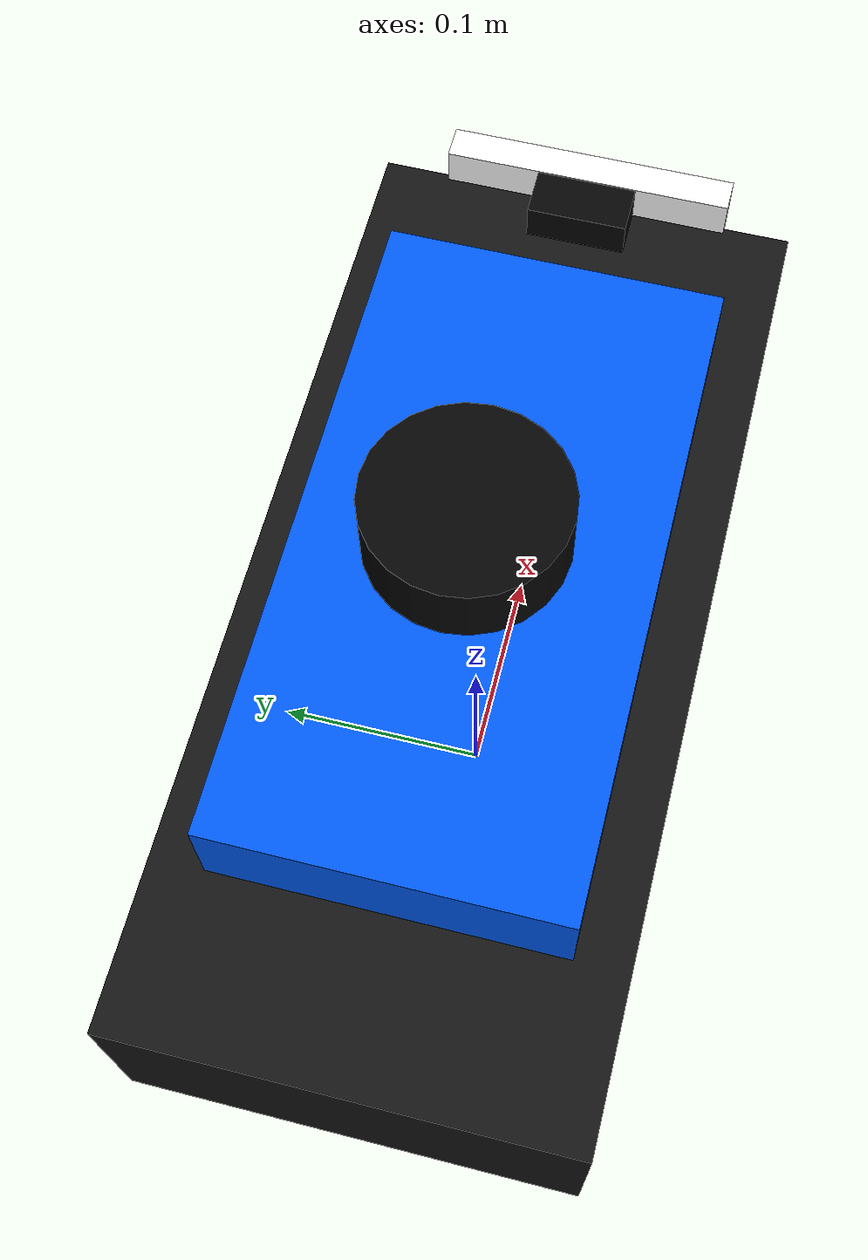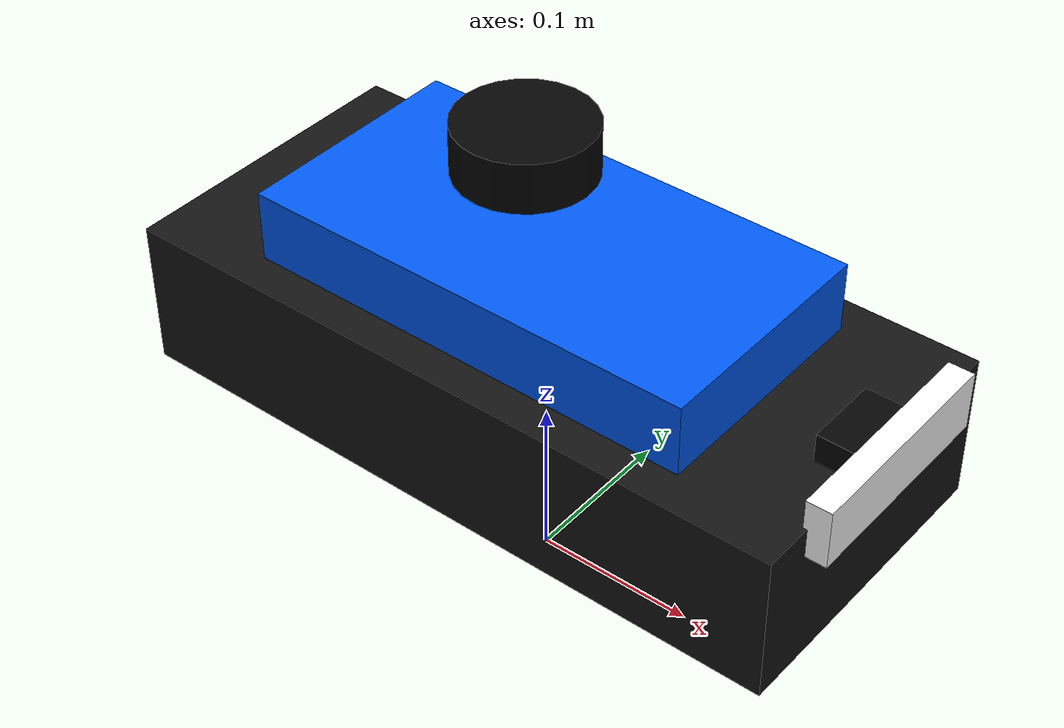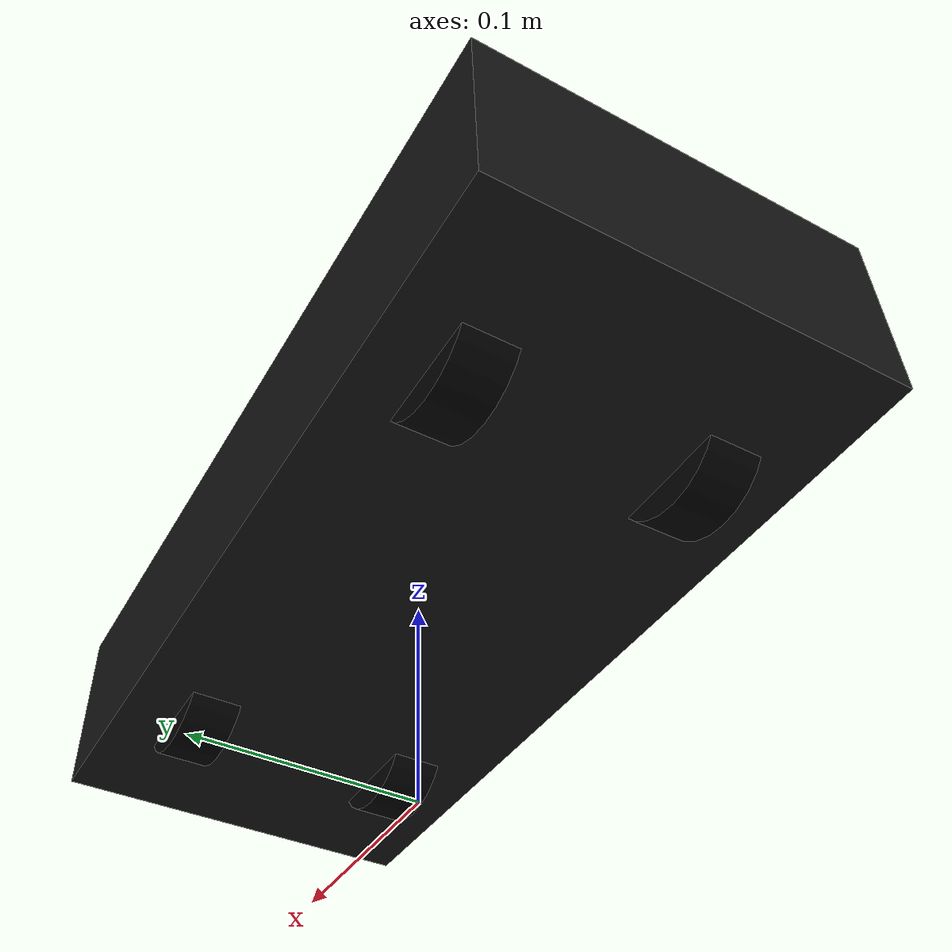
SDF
<?xml version="1.0"?>
<sdf version="1.9">
  <model name="qcar2_planb">
    <pose>0 0 0.08 0 0 0</pose>

    <link name="base_link">
      <inertial>
        <mass>3.275</mass>
        <inertia>
          <ixx>0.01235</ixx><ixy>0</ixy><ixz>0</ixz>
          <iyy>0.0292</iyy><iyz>0</iyz><izz>0.03223</izz>
        </inertia>
      </inertial>

      <!-- Collision blocks copied from the uploaded URDF. -->
      <collision name="collision_center">
        <pose>0.000 0 0.053 0 0 0</pose>
        <geometry><box><size>0.155 0.15 0.08</size></box></geometry>
      </collision>
      <collision name="collision_front">
        <pose>0.194 0 0.083 0 0 0</pose>
        <geometry><box><size>0.03 0.15 0.115</size></box></geometry>
      </collision>
      <collision name="collision_back">
        <pose>-0.183 0 0.083 0 0 0</pose>
        <geometry><box><size>0.037 0.15 0.115</size></box></geometry>
      </collision>

      <visual name="body_main">
        <pose>0 0 0.06 0 0 0</pose>
        <geometry><box><size>0.42 0.19 0.09</size></box></geometry>
        <material><ambient>0.08 0.08 0.08 1</ambient><diffuse>0.08 0.08 0.08 1</diffuse></material>
      </visual>
      <visual name="top_cover">
        <pose>0.0 0 0.125 0 0 0</pose>
        <geometry><box><size>0.28 0.145 0.045</size></box></geometry>
        <material><ambient>0.0 0.35 0.95 1</ambient><diffuse>0.0 0.35 0.95 1</diffuse></material>
      </visual>
      <visual name="front_marker">
        <pose>0.215 0 0.105 0 0 0</pose>
        <geometry><box><size>0.015 0.13 0.035</size></box></geometry>
        <material><ambient>1 1 1 1</ambient><diffuse>1 1 1 1</diffuse></material>
      </visual>
    </link>

    <link name="wheel_frontLeft">
      <pose>0.12960 0.05590 0.03338 -1.5708 0 0</pose>
      <collision name="collision"><geometry><cylinder><radius>0.033</radius><length>0.025</length></cylinder></geometry></collision>
      <visual name="visual"><geometry><cylinder><radius>0.033</radius><length>0.025</length></cylinder></geometry><material><ambient>0.01 0.01 0.01 1</ambient><diffuse>0.01 0.01 0.01 1</diffuse></material></visual>
    </link>
    <link name="wheel_frontRight">
      <pose>0.12960 -0.05590 0.03338 -1.5708 0 0</pose>
      <collision name="collision"><geometry><cylinder><radius>0.033</radius><length>0.025</length></cylinder></geometry></collision>
      <visual name="visual"><geometry><cylinder><radius>0.033</radius><length>0.025</length></cylinder></geometry><material><ambient>0.01 0.01 0.01 1</ambient><diffuse>0.01 0.01 0.01 1</diffuse></material></visual>
    </link>
    <link name="wheel_rearLeft">
      <pose>-0.12765 0.05610 0.03338 -1.5708 0 0</pose>
      <collision name="collision"><geometry><cylinder><radius>0.033</radius><length>0.025</length></cylinder></geometry></collision>
      <visual name="visual"><geometry><cylinder><radius>0.033</radius><length>0.025</length></cylinder></geometry><material><ambient>0.01 0.01 0.01 1</ambient><diffuse>0.01 0.01 0.01 1</diffuse></material></visual>
    </link>
    <link name="wheel_rearRight">
      <pose>-0.12765 -0.05610 0.03338 -1.5708 0 0</pose>
      <collision name="collision"><geometry><cylinder><radius>0.033</radius><length>0.025</length></cylinder></geometry></collision>
      <visual name="visual"><geometry><cylinder><radius>0.033</radius><length>0.025</length></cylinder></geometry><material><ambient>0.01 0.01 0.01 1</ambient><diffuse>0.01 0.01 0.01 1</diffuse></material></visual>
    </link>

    <joint name="wheel_frontLeft_joint" type="revolute"><parent>base_link</parent><child>wheel_frontLeft</child><axis><xyz>0 0 1</xyz></axis></joint>
    <joint name="wheel_frontRight_joint" type="revolute"><parent>base_link</parent><child>wheel_frontRight</child><axis><xyz>0 0 1</xyz></axis></joint>
    <joint name="wheel_rearLeft_joint" type="revolute"><parent>base_link</parent><child>wheel_rearLeft</child><axis><xyz>0 0 1</xyz></axis></joint>
    <joint name="wheel_rearRight_joint" type="revolute"><parent>base_link</parent><child>wheel_rearRight</child><axis><xyz>0 0 1</xyz></axis></joint>

    <link name="lidar">
      <pose>-0.0139 0 0.194 0 0 0</pose>
      <visual name="lidar_visual"><geometry><cylinder><radius>0.04</radius><length>0.03</length></cylinder></geometry><material><ambient>0.02 0.02 0.02 1</ambient><diffuse>0.02 0.02 0.02 1</diffuse></material></visual>
      <sensor name="lidar" type="gpu_lidar">
        <topic>/qcar/scan</topic>
        <update_rate>15</update_rate>
        <ray>
          <scan><horizontal><samples>720</samples><resolution>1</resolution><min_angle>-3.14159</min_angle><max_angle>3.14159</max_angle></horizontal></scan>
          <range><min>0.08</min><max>12.0</max><resolution>0.01</resolution></range>
        </ray>
        <always_on>true</always_on>
        <visualize>true</visualize>
      </sensor>
    </link>
    <joint name="lidar_joint" type="fixed"><parent>base_link</parent><child>lidar</child></joint>

    <link name="csi_front">
      <pose>0.198 0 0.1095 0 0 0</pose>
      <visual name="camera_visual"><geometry><box><size>0.025 0.045 0.025</size></box></geometry><material><ambient>0.02 0.02 0.02 1</ambient><diffuse>0.02 0.02 0.02 1</diffuse></material></visual>
      <sensor name="front_camera" type="camera">
        <topic>/qcar/camera/image_raw</topic>
        <update_rate>15</update_rate>
        <camera>
          <horizontal_fov>1.047</horizontal_fov>
          <image><width>640</width><height>480</height><format>R8G8B8</format></image>
          <clip><near>0.05</near><far>50</far></clip>
        </camera>
        <always_on>true</always_on>
        <visualize>true</visualize>
      </sensor>
    </link>
    <joint name="csi_front_joint" type="fixed"><parent>base_link</parent><child>csi_front</child></joint>

    <plugin filename="gz-sim-diff-drive-system" name="gz::sim::systems::DiffDrive">
      <left_joint>wheel_frontLeft_joint</left_joint>
      <left_joint>wheel_rearLeft_joint</left_joint>
      <right_joint>wheel_frontRight_joint</right_joint>
      <right_joint>wheel_rearRight_joint</right_joint>
      <wheel_separation>0.112</wheel_separation>
      <wheel_radius>0.033</wheel_radius>
      <topic>/qcar/cmd_vel</topic>
      <odom_topic>/qcar/odom</odom_topic>
      <tf_topic>/tf</tf_topic>
      <frame_id>odom</frame_id>
      <child_frame_id>base_link</child_frame_id>
      <odom_publish_frequency>30</odom_publish_frequency>
    </plugin>
  </model>
</sdf>
